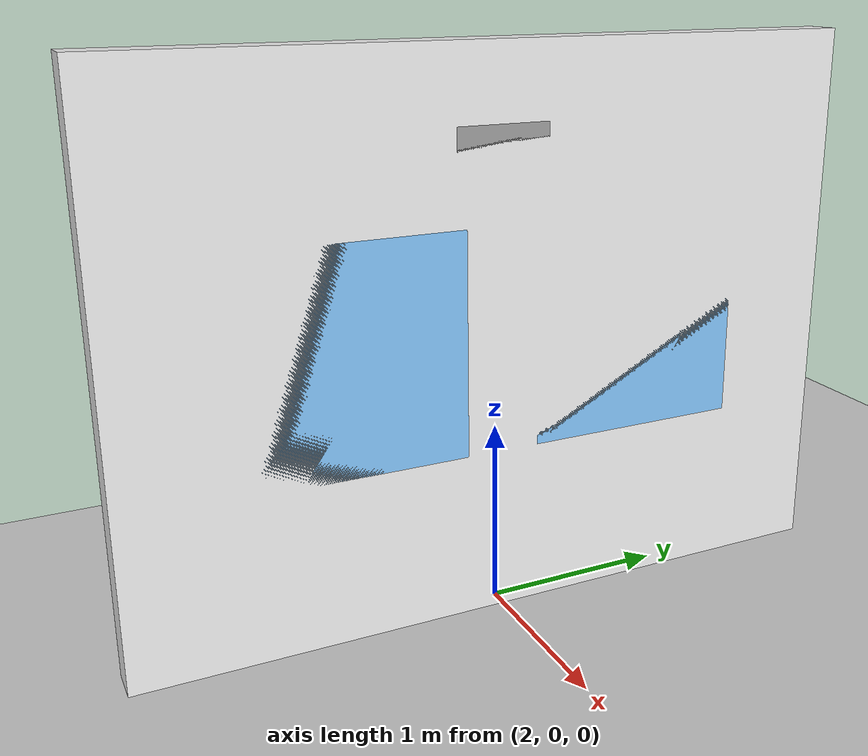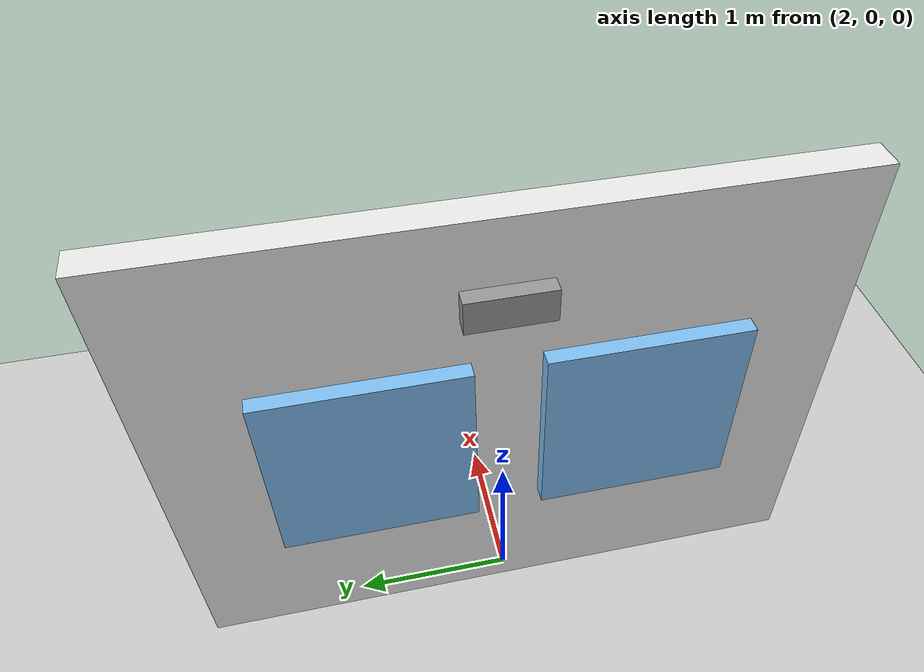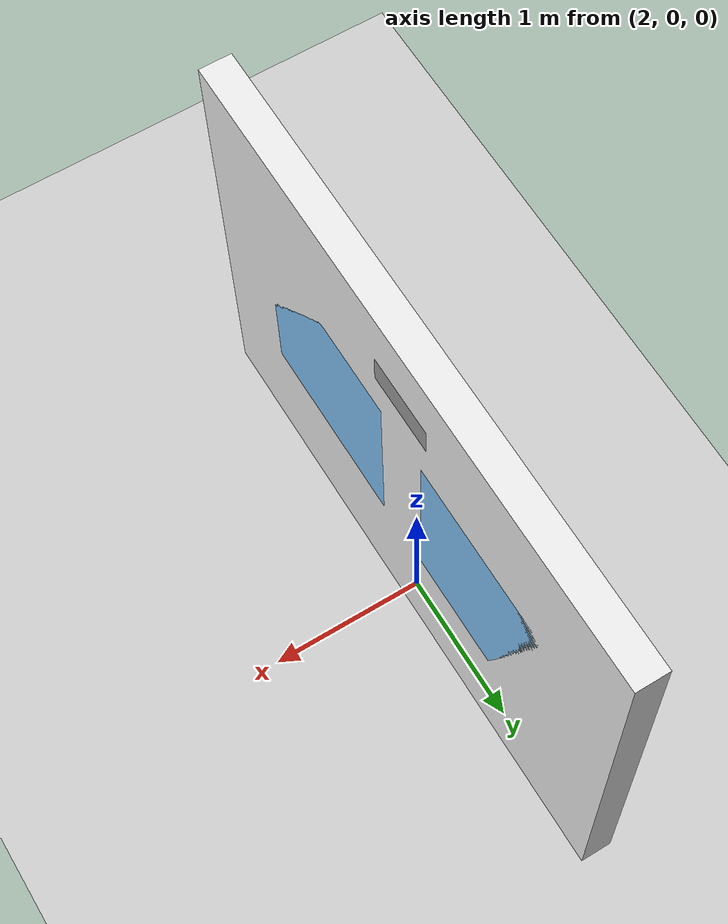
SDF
<?xml version="1.0" ?>
<sdf version="1.6">
  <world name="painting_world">
    <!-- Add default physics settings -->
    <physics type="ode">
      <max_step_size>0.001</max_step_size>
      <real_time_factor>1</real_time_factor>
      <real_time_update_rate>1000</real_time_update_rate>
    </physics>

    <!-- Add lighting -->
    <include>
      <uri>model://sun</uri>
    </include>

    <!-- Add ground plane -->
    <include>
      <uri>model://ground_plane</uri>
    </include>

    <!-- Main Wall to be painted -->
    <model name="painting_wall">
      <static>true</static>
      <pose>2.0 0 1.5 0 0 0</pose>
      <link name="wall_link">
        <collision name="wall_collision">
          <geometry>
            <box>
              <size>0.2 4.0 3.0</size>
            </box>
          </geometry>
        </collision>
        <visual name="wall_visual">
          <geometry>
            <box>
              <size>0.2 4.0 3.0</size>
            </box>
          </geometry>
          <material>
            <script>
              <uri>file://media/materials/scripts/gazebo.material</uri>
              <name>Gazebo/White</name>
            </script>
          </material>
        </visual>
      </link>
    </model>

    <!-- Window 1 -->
    <model name="window1">
      <static>true</static>
      <pose>1.95 -0.8 1.5 0 0 0</pose>
      <link name="window1_link">
        <collision name="window1_collision">
          <geometry>
            <box>
              <size>0.3 1.2 1.2</size>
            </box>
          </geometry>
        </collision>
        <visual name="window1_visual">
          <geometry>
            <box>
              <size>0.3 1.2 1.2</size>
            </box>
          </geometry>
          <material>
            <script>
              <uri>file://media/materials/scripts/gazebo.material</uri>
              <name>Gazebo/SkyBlue</name>
            </script>
            <transparency>0.3</transparency>
          </material>
        </visual>
      </link>
    </model>

    <!-- Window 2 -->
    <model name="window2">
      <static>true</static>
      <pose>1.95 0.8 1.5 0 0 0</pose>
      <link name="window2_link">
        <collision name="window2_collision">
          <geometry>
            <box>
              <size>0.3 1.2 1.2</size>
            </box>
          </geometry>
        </collision>
        <visual name="window2_visual">
          <geometry>
            <box>
              <size>0.3 1.2 1.2</size>
            </box>
          </geometry>
          <material>
            <script>
              <uri>file://media/materials/scripts/gazebo.material</uri>
              <name>Gazebo/SkyBlue</name>
            </script>
            <transparency>0.3</transparency>
          </material>
        </visual>
      </link>
    </model>

    <!-- Light fixture -->
    <model name="light_fixture">
      <static>true</static>
      <pose>1.95 0 2.5 0 0 0</pose>
      <link name="light_link">
        <collision name="light_collision">
          <geometry>
            <box>
              <size>0.3 0.5 0.2</size>
            </box>
          </geometry>
        </collision>
        <visual name="light_visual">
          <geometry>
            <box>
              <size>0.3 0.5 0.2</size>
            </box>
          </geometry>
          <material>
            <script>
              <uri>file://media/materials/scripts/gazebo.material</uri>
              <name>Gazebo/Grey</name>
            </script>
          </material>
        </visual>
      </link>
    </model>
  </world>
</sdf>
